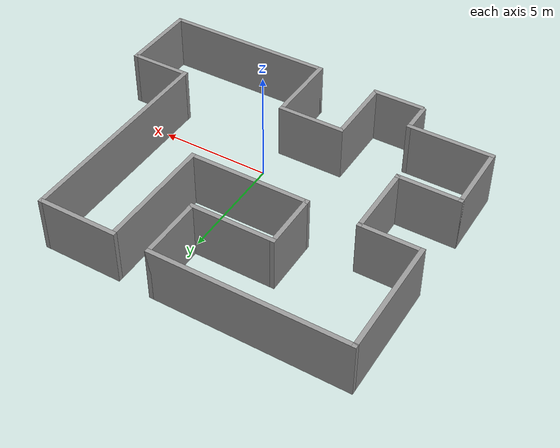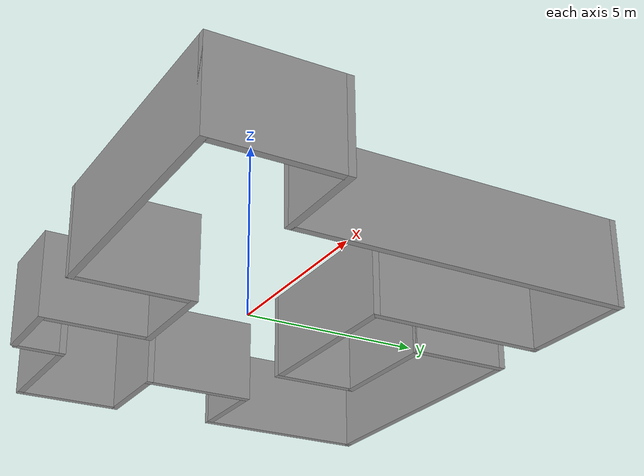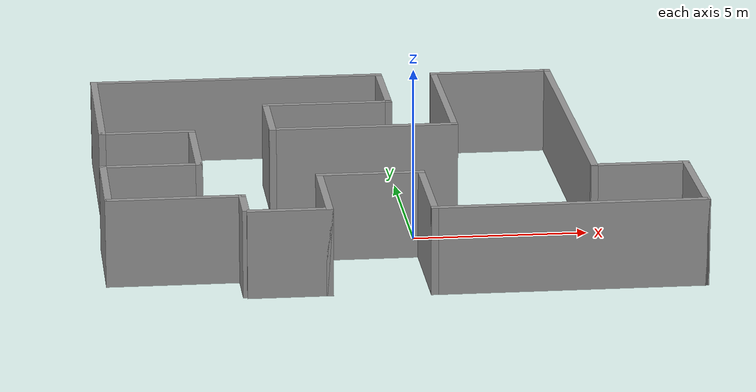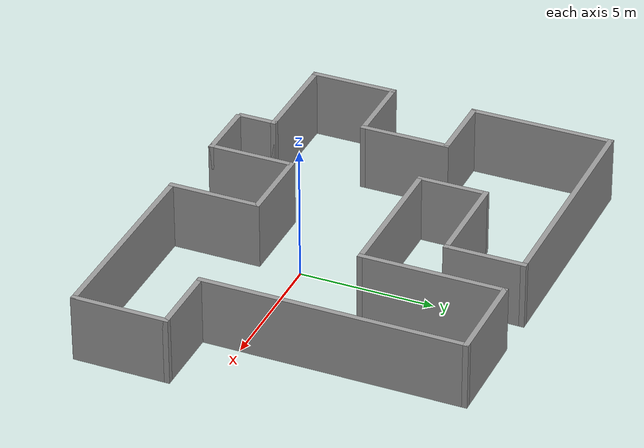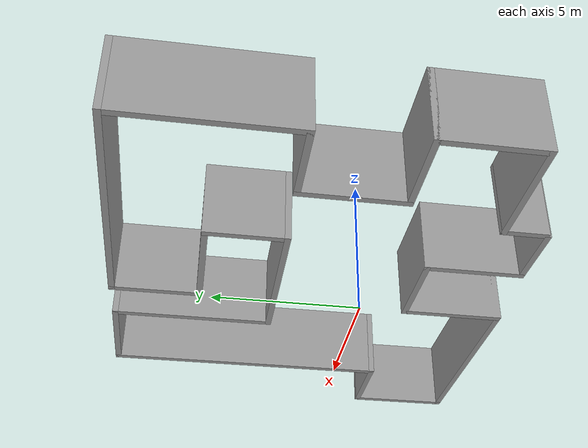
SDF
<?xml version='1.0'?>
<sdf version='1.4'>
  <model name='room2_exp1'>
    <link name='Wall_0'>
      <collision name='Wall_0_Collision'>
        <geometry>
          <box>
            <size>2.37428 0.2 2.5</size>
          </box>
        </geometry>
        <pose>0 0 1.25 0 -0 0</pose>
      </collision>
      <visual name='Wall_0_Visual'>
        <pose>0 0 1.25 0 -0 0</pose>
        <geometry>
          <box>
            <size>2.37428 0.2 2.5</size>
          </box>
        </geometry>
        <material>
          <script>
            <uri>file://media/materials/scripts/gazebo.material</uri>
            <name>Gazebo/Grey</name>
          </script>
        </material>
      </visual>
      <velocity_decay>
        <linear>0</linear>
        <angular>0</angular>
      </velocity_decay>
      <pose>-3.91362 -4.655 0 0 -0 0</pose>
    </link>
    <link name='Wall_1'>
      <collision name='Wall_1_Collision'>
        <geometry>
          <box>
            <size>3.27637 0.2 2.5</size>
          </box>
        </geometry>
        <pose>0 0 1.25 0 -0 0</pose>
      </collision>
      <visual name='Wall_1_Visual'>
        <pose>0 0 1.25 0 -0 0</pose>
        <geometry>
          <box>
            <size>3.27637 0.2 2.5</size>
          </box>
        </geometry>
        <material>
          <script>
            <uri>file://media/materials/scripts/gazebo.material</uri>
            <name>Gazebo/Grey</name>
          </script>
        </material>
      </visual>
      <velocity_decay>
        <linear>0</linear>
        <angular>0</angular>
      </velocity_decay>
      <pose>-2.82648 -3.11681 0 0 -0 1.5708</pose>
    </link>
    <link name='Wall_10'>
      <collision name='Wall_10_Collision'>
        <geometry>
          <box>
            <size>5.4914 0.2 2.5</size>
          </box>
        </geometry>
        <pose>0 0 1.25 0 -0 0</pose>
      </collision>
      <visual name='Wall_10_Visual'>
        <pose>0 0 1.25 0 -0 0</pose>
        <geometry>
          <box>
            <size>5.4914 0.2 2.5</size>
          </box>
        </geometry>
        <material>
          <script>
            <uri>file://media/materials/scripts/gazebo.material</uri>
            <name>Gazebo/Grey</name>
          </script>
        </material>
      </visual>
      <velocity_decay>
        <linear>0</linear>
        <angular>0</angular>
      </velocity_decay>
      <pose>-1.11975 2.93696 0 0 -0 3.14159</pose>
    </link>
    <link name='Wall_11'>
      <collision name='Wall_11_Collision'>
        <geometry>
          <box>
            <size>2.66112 0.2 2.5</size>
          </box>
        </geometry>
        <pose>0 0 1.25 0 -0 0</pose>
      </collision>
      <visual name='Wall_11_Visual'>
        <pose>0 0 1.25 0 -0 0</pose>
        <geometry>
          <box>
            <size>2.66112 0.2 2.5</size>
          </box>
        </geometry>
        <material>
          <script>
            <uri>file://media/materials/scripts/gazebo.material</uri>
            <name>Gazebo/Grey</name>
          </script>
        </material>
      </visual>
      <velocity_decay>
        <linear>0</linear>
        <angular>0</angular>
      </velocity_decay>
      <pose>-3.76545 4.16752 0 0 -0 1.5708</pose>
    </link>
    <link name='Wall_12'>
      <collision name='Wall_12_Collision'>
        <geometry>
          <box>
            <size>3.83014 0.2 2.5</size>
          </box>
        </geometry>
        <pose>0 0 1.25 0 -0 0</pose>
      </collision>
      <visual name='Wall_12_Visual'>
        <pose>0 0 1.25 0 -0 0</pose>
        <geometry>
          <box>
            <size>3.83014 0.2 2.5</size>
          </box>
        </geometry>
        <material>
          <script>
            <uri>file://media/materials/scripts/gazebo.material</uri>
            <name>Gazebo/Grey</name>
          </script>
        </material>
      </visual>
      <velocity_decay>
        <linear>0</linear>
        <angular>0</angular>
      </velocity_decay>
      <pose>-1.95038 5.39807 0 0 -0 0</pose>
    </link>
    <link name='Wall_13'>
      <collision name='Wall_13_Collision'>
        <geometry>
          <box>
            <size>3.03028 0.2 2.5</size>
          </box>
        </geometry>
        <pose>0 0 1.25 0 -0 0</pose>
      </collision>
      <visual name='Wall_13_Visual'>
        <pose>0 0 1.25 0 -0 0</pose>
        <geometry>
          <box>
            <size>3.03028 0.2 2.5</size>
          </box>
        </geometry>
        <material>
          <script>
            <uri>file://media/materials/scripts/gazebo.material</uri>
            <name>Gazebo/Grey</name>
          </script>
        </material>
      </visual>
      <velocity_decay>
        <linear>0</linear>
        <angular>0</angular>
      </velocity_decay>
      <pose>-0.135308 6.81321 0 0 -0 1.5708</pose>
    </link>
    <link name='Wall_14'>
      <collision name='Wall_14_Collision'>
        <geometry>
          <box>
            <size>8.75238 0.2 2.5</size>
          </box>
        </geometry>
        <pose>0 0 1.25 0 -0 0</pose>
      </collision>
      <visual name='Wall_14_Visual'>
        <pose>0 0 1.25 0 -0 0</pose>
        <geometry>
          <box>
            <size>8.75238 0.2 2.5</size>
          </box>
        </geometry>
        <material>
          <script>
            <uri>file://media/materials/scripts/gazebo.material</uri>
            <name>Gazebo/Grey</name>
          </script>
        </material>
      </visual>
      <velocity_decay>
        <linear>0</linear>
        <angular>0</angular>
      </velocity_decay>
      <pose>-4.4115 8.22836 0 0 -0 3.14159</pose>
    </link>
    <link name='Wall_15'>
      <collision name='Wall_15_Collision'>
        <geometry>
          <box>
            <size>5.42987 0.2 2.5</size>
          </box>
        </geometry>
        <pose>0 0 1.25 0 -0 0</pose>
      </collision>
      <visual name='Wall_15_Visual'>
        <pose>0 0 1.25 0 -0 0</pose>
        <geometry>
          <box>
            <size>5.42987 0.2 2.5</size>
          </box>
        </geometry>
        <material>
          <script>
            <uri>file://media/materials/scripts/gazebo.material</uri>
            <name>Gazebo/Grey</name>
          </script>
        </material>
      </visual>
      <velocity_decay>
        <linear>0</linear>
        <angular>0</angular>
      </velocity_decay>
      <pose>-8.68768 5.61342 0 0 0 -1.5708</pose>
    </link>
    <link name='Wall_17'>
      <collision name='Wall_17_Collision'>
        <geometry>
          <box>
            <size>2.72264 0.2 2.5</size>
          </box>
        </geometry>
        <pose>0 0 1.25 0 -0 0</pose>
      </collision>
      <visual name='Wall_17_Visual'>
        <pose>0 0 1.25 0 -0 0</pose>
        <geometry>
          <box>
            <size>2.72264 0.2 2.5</size>
          </box>
        </geometry>
        <material>
          <script>
            <uri>file://media/materials/scripts/gazebo.material</uri>
            <name>Gazebo/Grey</name>
          </script>
        </material>
      </visual>
      <velocity_decay>
        <linear>0</linear>
        <angular>0</angular>
      </velocity_decay>
      <pose>-7.36483 2.99849 0 0 -0 0</pose>
    </link>
    <link name='Wall_18'>
      <collision name='Wall_18_Collision'>
        <geometry>
          <box>
            <size>3.39945 0.2 2.5</size>
          </box>
        </geometry>
        <pose>0 0 1.25 0 -0 0</pose>
      </collision>
      <visual name='Wall_18_Visual'>
        <pose>0 0 1.25 0 -0 0</pose>
        <geometry>
          <box>
            <size>3.39945 0.2 2.5</size>
          </box>
        </geometry>
        <material>
          <script>
            <uri>file://media/materials/scripts/gazebo.material</uri>
            <name>Gazebo/Grey</name>
          </script>
        </material>
      </visual>
      <velocity_decay>
        <linear>0</linear>
        <angular>0</angular>
      </velocity_decay>
      <pose>-6.10351 1.39876 0 0 0 -1.5708</pose>
    </link>
    <link name='Wall_19'>
      <collision name='Wall_19_Collision'>
        <geometry>
          <box>
            <size>2.90723 0.2 2.5</size>
          </box>
        </geometry>
        <pose>0 0 1.25 0 -0 0</pose>
      </collision>
      <visual name='Wall_19_Visual'>
        <pose>0 0 1.25 0 -0 0</pose>
        <geometry>
          <box>
            <size>2.90723 0.2 2.5</size>
          </box>
        </geometry>
        <material>
          <script>
            <uri>file://media/materials/scripts/gazebo.material</uri>
            <name>Gazebo/Grey</name>
          </script>
        </material>
      </visual>
      <velocity_decay>
        <linear>0</linear>
        <angular>0</angular>
      </velocity_decay>
      <pose>-7.45712 -0.200962 0 0 -0 3.14159</pose>
    </link>
    <link name='Wall_2'>
      <collision name='Wall_2_Collision'>
        <geometry>
          <box>
            <size>3.06819 0.2 2.5</size>
          </box>
        </geometry>
        <pose>0 0 1.25 0 -0 0</pose>
      </collision>
      <visual name='Wall_2_Visual'>
        <pose>0 0 1.25 0 -0 0</pose>
        <geometry>
          <box>
            <size>3.06819 0.2 2.5</size>
          </box>
        </geometry>
        <material>
          <script>
            <uri>file://media/materials/scripts/gazebo.material</uri>
            <name>Gazebo/Grey</name>
          </script>
        </material>
      </visual>
      <velocity_decay>
        <linear>0</linear>
        <angular>0</angular>
      </velocity_decay>
      <pose>-1.39238 -1.57862 0 0 -0 0</pose>
    </link>
    <link name='Wall_20'>
      <collision name='Wall_20_Collision'>
        <geometry>
          <box>
            <size>3.27639 0.2 2.5</size>
          </box>
        </geometry>
        <pose>0 0 1.25 0 -0 0</pose>
      </collision>
      <visual name='Wall_20_Visual'>
        <pose>0 0 1.25 0 -0 0</pose>
        <geometry>
          <box>
            <size>3.27639 0.2 2.5</size>
          </box>
        </geometry>
        <material>
          <script>
            <uri>file://media/materials/scripts/gazebo.material</uri>
            <name>Gazebo/Grey</name>
          </script>
        </material>
      </visual>
      <velocity_decay>
        <linear>0</linear>
        <angular>0</angular>
      </velocity_decay>
      <pose>-8.81074 -1.73916 0 0 0 -1.5708</pose>
    </link>
    <link name='Wall_21'>
      <collision name='Wall_21_Collision'>
        <geometry>
          <box>
            <size>3.89167 0.2 2.5</size>
          </box>
        </geometry>
        <pose>0 0 1.25 0 -0 0</pose>
      </collision>
      <visual name='Wall_21_Visual'>
        <pose>0 0 1.25 0 -0 0</pose>
        <geometry>
          <box>
            <size>3.89167 0.2 2.5</size>
          </box>
        </geometry>
        <material>
          <script>
            <uri>file://media/materials/scripts/gazebo.material</uri>
            <name>Gazebo/Grey</name>
          </script>
        </material>
      </visual>
      <velocity_decay>
        <linear>0</linear>
        <angular>0</angular>
      </velocity_decay>
      <pose>-6.9649 -3.27736 0 0 -0 0</pose>
    </link>
    <link name='Wall_22'>
      <collision name='Wall_22_Collision'>
        <geometry>
          <box>
            <size>1.49209 0.2 2.5</size>
          </box>
        </geometry>
        <pose>0 0 1.25 0 -0 0</pose>
      </collision>
      <visual name='Wall_22_Visual'>
        <pose>0 0 1.25 0 -0 0</pose>
        <geometry>
          <box>
            <size>1.49209 0.2 2.5</size>
          </box>
        </geometry>
        <material>
          <script>
            <uri>file://media/materials/scripts/gazebo.material</uri>
            <name>Gazebo/Grey</name>
          </script>
        </material>
      </visual>
      <velocity_decay>
        <linear>0</linear>
        <angular>0</angular>
      </velocity_decay>
      <pose>-5.11907 -3.9234 0 0 0 -1.5708</pose>
    </link>
    <link name='Wall_3'>
      <collision name='Wall_3_Collision'>
        <geometry>
          <box>
            <size>3.48455 0.2 2.5</size>
          </box>
        </geometry>
        <pose>0 0 1.25 0 -0 0</pose>
      </collision>
      <visual name='Wall_3_Visual'>
        <pose>0 0 1.25 0 -0 0</pose>
        <geometry>
          <box>
            <size>3.48455 0.2 2.5</size>
          </box>
        </geometry>
        <material>
          <script>
            <uri>file://media/materials/scripts/gazebo.material</uri>
            <name>Gazebo/Grey</name>
          </script>
        </material>
      </visual>
      <velocity_decay>
        <linear>0</linear>
        <angular>0</angular>
      </velocity_decay>
      <pose>0.041715 -3.2209 0 0 0 -1.5708</pose>
    </link>
    <link name='Wall_4'>
      <collision name='Wall_4_Collision'>
        <geometry>
          <box>
            <size>7.74058 0.2 2.5</size>
          </box>
        </geometry>
        <pose>0 0 1.25 0 -0 0</pose>
      </collision>
      <visual name='Wall_4_Visual'>
        <pose>0 0 1.25 0 -0 0</pose>
        <geometry>
          <box>
            <size>7.74058 0.2 2.5</size>
          </box>
        </geometry>
        <material>
          <script>
            <uri>file://media/materials/scripts/gazebo.material</uri>
            <name>Gazebo/Grey</name>
          </script>
        </material>
      </visual>
      <velocity_decay>
        <linear>0</linear>
        <angular>0</angular>
      </velocity_decay>
      <pose>3.812 -4.86317 0 0 -0 0</pose>
    </link>
    <link name='Wall_5'>
      <collision name='Wall_5_Collision'>
        <geometry>
          <box>
            <size>3.6002 0.2 2.5</size>
          </box>
        </geometry>
        <pose>0 0 1.25 0 -0 0</pose>
      </collision>
      <visual name='Wall_5_Visual'>
        <pose>0 0 1.25 0 -0 0</pose>
        <geometry>
          <box>
            <size>3.6002 0.2 2.5</size>
          </box>
        </geometry>
        <material>
          <script>
            <uri>file://media/materials/scripts/gazebo.material</uri>
            <name>Gazebo/Grey</name>
          </script>
        </material>
      </visual>
      <velocity_decay>
        <linear>0</linear>
        <angular>0</angular>
      </velocity_decay>
      <pose>7.58229 -3.16307 0 0 -0 1.5708</pose>
    </link>
    <link name='Wall_6'>
      <collision name='Wall_6_Collision'>
        <geometry>
          <box>
            <size>2.81376 0.2 2.5</size>
          </box>
        </geometry>
        <pose>0 0 1.25 0 -0 0</pose>
      </collision>
      <visual name='Wall_6_Visual'>
        <pose>0 0 1.25 0 -0 0</pose>
        <geometry>
          <box>
            <size>2.81376 0.2 2.5</size>
          </box>
        </geometry>
        <material>
          <script>
            <uri>file://media/materials/scripts/gazebo.material</uri>
            <name>Gazebo/Grey</name>
          </script>
        </material>
      </visual>
      <velocity_decay>
        <linear>0</linear>
        <angular>0</angular>
      </velocity_decay>
      <pose>6.27541 -1.46297 0 0 -0 3.14159</pose>
    </link>
    <link name='Wall_7'>
      <collision name='Wall_7_Collision'>
        <geometry>
          <box>
            <size>9.8298 0.2 2.5</size>
          </box>
        </geometry>
        <pose>0 0 1.25 0 -0 0</pose>
      </collision>
      <visual name='Wall_7_Visual'>
        <pose>0 0 1.25 0 -0 0</pose>
        <geometry>
          <box>
            <size>9.8298 0.2 2.5</size>
          </box>
        </geometry>
        <material>
          <script>
            <uri>file://media/materials/scripts/gazebo.material</uri>
            <name>Gazebo/Grey</name>
          </script>
        </material>
      </visual>
      <velocity_decay>
        <linear>0</linear>
        <angular>0</angular>
      </velocity_decay>
      <pose>4.96853 3.35193 0 0 -0 1.5708</pose>
    </link>
    <link name='Wall_8'>
      <collision name='Wall_8_Collision'>
        <geometry>
          <box>
            <size>3.64259 0.2 2.5</size>
          </box>
        </geometry>
        <pose>0 0 1.25 0 -0 0</pose>
      </collision>
      <visual name='Wall_8_Visual'>
        <pose>0 0 1.25 0 -0 0</pose>
        <geometry>
          <box>
            <size>3.64259 0.2 2.5</size>
          </box>
        </geometry>
        <material>
          <script>
            <uri>file://media/materials/scripts/gazebo.material</uri>
            <name>Gazebo/Grey</name>
          </script>
        </material>
      </visual>
      <velocity_decay>
        <linear>0</linear>
        <angular>0</angular>
      </velocity_decay>
      <pose>3.24724 8.16683 0 0 -0 3.14159</pose>
    </link>
    <link name='Wall_9'>
      <collision name='Wall_9_Collision'>
        <geometry>
          <box>
            <size>5.42987 0.2 2.5</size>
          </box>
        </geometry>
        <pose>0 0 1.25 0 -0 0</pose>
      </collision>
      <visual name='Wall_9_Visual'>
        <pose>0 0 1.25 0 -0 0</pose>
        <geometry>
          <box>
            <size>5.42987 0.2 2.5</size>
          </box>
        </geometry>
        <material>
          <script>
            <uri>file://media/materials/scripts/gazebo.material</uri>
            <name>Gazebo/Grey</name>
          </script>
        </material>
      </visual>
      <velocity_decay>
        <linear>0</linear>
        <angular>0</angular>
      </velocity_decay>
      <pose>1.52595 5.55189 0 0 0 -1.5708</pose>
    </link>
    <static>1</static>
  </model>
</sdf>
